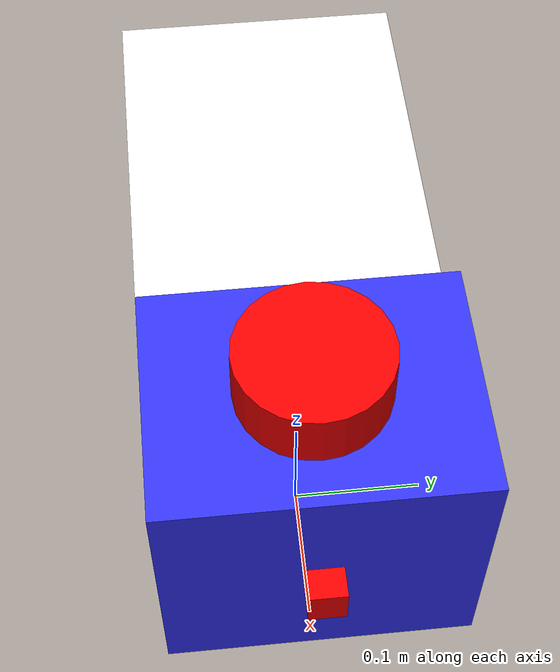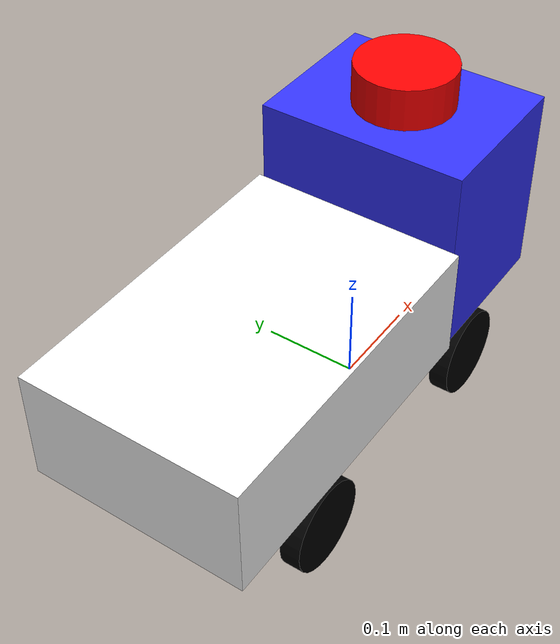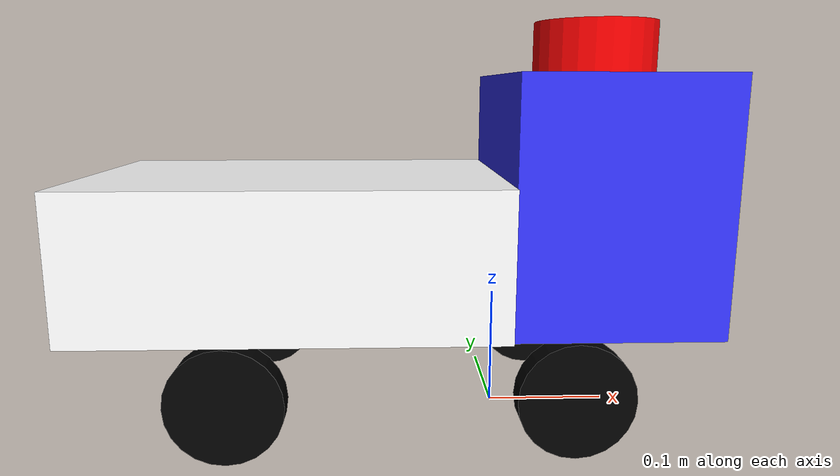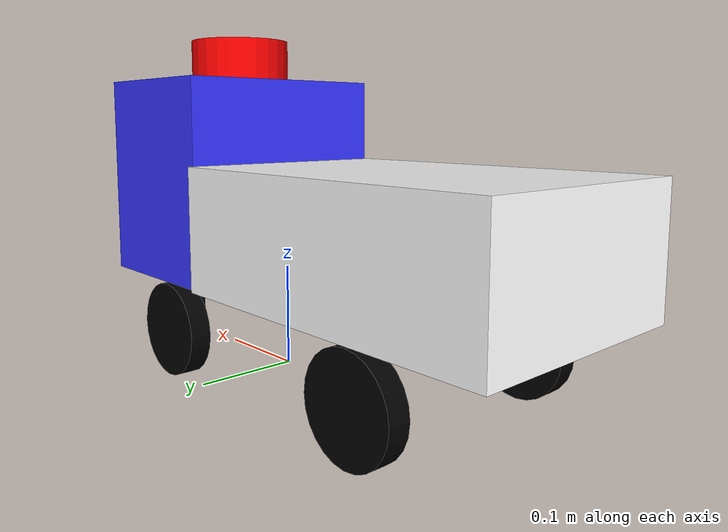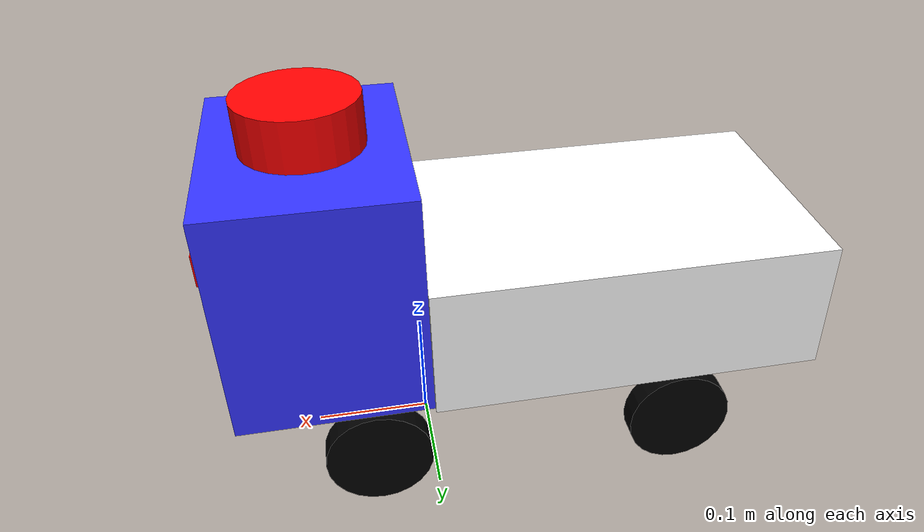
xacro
<?xml version="1.0"?>
<robot xmlns:xacro="http://ros.org/wiki/xacro" name="car">
  <xacro:arg name="wheel_diameter" default="0.09"/>

  <xacro:property name="wheel_radius" value="${$(arg wheel_diameter)/2}"/>
  <xacro:property name="wheel_diameter" value="0.09"/>
  <xacro:property name="wheel_width" value="0.02"/>
  <xacro:property name="car_width" value="0.492"/>
  <xacro:property name="cabin_width" value="0.21"/>
  <xacro:property name="trunk_width" value="0.22"/>
  <xacro:property name="wheel_friction" value="0.8"/>
  <xacro:property name="wheelbase_length" value="0.26"/>
  <xacro:property name="cabin_length" value="0.16"/>
  <xacro:property name="trunk_length" value="0.334"/>
  <xacro:property name="front_wheelbase_width" value="0.198"/>
  <xacro:property name="rear_wheelbase_width" value="0.204"/>
  <xacro:property name="wheelbase_width" value="0.213"/>
  <xacro:property name="wheel_mass" value="0.1"/>
  <xacro:property name="total_mass" value = "3.0"/>
  <xacro:property name="chassis_height" value = "0.286"/>
  <xacro:property name="cabin_height" value = "${chassis_height - wheel_diameter}"/>
  <xacro:property name="trunk_height" value = "0.115"/>
  <xacro:property name="chassis_elevation" value = "-0.01"/>
  <xacro:property name="chassis_mass" value = "${total_mass-4*wheel_mass}"/>
  <xacro:property name="cabin_mass" value = "${chassis_mass/2}"/>
  <xacro:property name="trunk_mass" value = "${chassis_mass/2}"/>

  <material name="blue">
      <color rgba="0.2 0.2 1 1"/>
    </material>

    <material name="white">
      <color rgba="1 1 1 1" />
    </material>

    <material name="black">
      <color rgba="0 0 0 1"/>
    </material>

    <material name="red">
        <color rgba="1 0 0 1"/>
    </material>

    <material name="gray">
        <color rgba="0.5 0.5 0.5 1"/>
    </material>

  <xacro:macro name="cylinder_inertia" params="m r h">
        <inertia  ixx="${m*(3*r*r+h*h)/12}" ixy = "0" ixz = "0"
                    iyy="${m*(3*r*r+h*h)/12}" iyz = "0"
                    izz="${m*r*r/2}" />
  </xacro:macro>

  <xacro:macro name="box_inertia" params="m x y z">
          <inertia  ixx="${m*(y*y+z*z)/12}" ixy = "0" ixz = "0"
                    iyy="${m*(x*x+z*z)/12}" iyz = "0"
                    izz="${m*(x*x+z*z)/12}" />
  </xacro:macro>

  <xacro:macro name="sphere_inertia" params="m r">
          <inertia  ixx="${2*m*r*r/5}" ixy = "0" ixz = "0"
                    iyy="${2*m*r*r/5}" iyz = "0"
                    izz="${2*m*r*r/5}" />
  </xacro:macro>

  <xacro:macro name="cylinder_inertial" params="m r h">
    <inertial>
      <mass value="${m}"/>
      <xacro:cylinder_inertia m="${m}" r="${r}" h="${h}"/>
    </inertial>
  </xacro:macro>

 <link name="base_footprint"/>

  <link name="base_link"/>

  <link name="cabin_link">
    <visual>
      <geometry>
        <box size="${cabin_length} ${cabin_width} ${cabin_height}"/>
      </geometry>
      <material name="blue"/>
    </visual>
    <collision>
      <geometry>
        <box size="${cabin_length} ${cabin_width} ${cabin_height}"/>
      </geometry>
      <material name="blue"/>
    </collision>
    <inertial>
      <mass value="${cabin_mass}"/>
      <xacro:box_inertia m="${0.5*chassis_mass}" x="${cabin_length}" y="${cabin_width}" z="${cabin_height}"/>
    </inertial>
  </link>

  <gazebo reference="cabin_link">
        <material>Gazebo/Blue</material>
    </gazebo>

  <link name="trunk_link">
    <visual>
      <geometry>
        <box size="${trunk_length} ${trunk_width} ${trunk_height}"/>
      </geometry>
        <material name="white"/>
    </visual>
    <collision>
      <geometry>
        <box size="${trunk_length} ${trunk_width} ${trunk_height}"/>
      </geometry>
        <material name="white"/>
    </collision>
    <inertial>
      <mass value="${trunk_mass}"/>
      <xacro:box_inertia m="${0.5*chassis_mass}" x="${trunk_length}" y="${trunk_width}" z="${trunk_height}"/>
    </inertial>
  </link>

  <gazebo reference="trunk_link">
        <material>Gazebo/White</material>
    </gazebo>

  <link name="back_left_wheel">
    <visual>
      <geometry>
        <cylinder length="${wheel_width}" radius="${wheel_radius}"/>
      </geometry>
      <material name="black"/>
    </visual>
    <collision>
      <geometry>
        <cylinder length="${wheel_width}" radius="${wheel_radius}"/>
      </geometry>
    </collision>

    <xacro:cylinder_inertial m="${wheel_mass}" r="${wheel_radius}" h="${wheel_width}"/>
  </link>

  <gazebo reference="back_left_wheel">
        <material>Gazebo/Black</material>
    </gazebo>

  <link name="camera_link">
    <visual>
      <geometry>
       <box size="0.02 0.025 0.03"/>
      </geometry>
       <material name="red"/>
    </visual>
  </link>

  <joint name="camera_joint" type="fixed">
        <parent link="cabin_link"/>
        <child link="camera_link"/>
        <origin xyz="${cabin_length/2 + 0.01} 0 0" rpy="0 0 0"/>
    </joint>

 <joint name="camera_optical_joint" type="fixed">
        <parent link="camera_link"/>
        <child link="camera_link_optical"/>
        <origin xyz="0 0 0" rpy="${-pi/2} 0 ${-pi/2}"/>
    </joint>

    <link name="camera_link_optical"></link>

    <gazebo reference="camera_link">
        <material>Gazebo/Red</material>

        <sensor name="camera" type="camera">
            <pose> 0 0 0 0 0 0 </pose>
            <visualize>true</visualize>
            <update_rate>10</update_rate>
            <camera>
                <horizontal_fov>1.089</horizontal_fov>
                <image>
                    <format>R8G8B8</format>
                    <width>640</width>
                    <height>480</height>
                </image>
                <clip>
                    <near>0.05</near>
                    <far>8.0</far>
                </clip>
            </camera>
            <plugin name="camera_controller" filename="libgazebo_ros_camera.so">
                <frame_name>camera_link_optical</frame_name>
            </plugin>
        </sensor>
    </gazebo>

  <link name="laser_scanner_link">
    <visual>
          <geometry>
              <cylinder radius="0.05" length="0.042"/>
          </geometry>
          <material name="red"/>
      </visual>
      <collision>
          <geometry>
              <cylinder radius="0.045" length="0.02"/>
          </geometry>
      </collision>
    <inertial>
      <mass value="1e-5"/>
      <origin xyz="0 0 0" rpy="0 0 0"/>
      <inertia ixx="1e-6" ixy="0" ixz="0" iyy="1e-6" iyz="0" izz="1e-6"/>
    </inertial>
  </link>

  <gazebo reference="laser_scanner_link">
    <sensor type="ray" name="laser_scanner">
    <always_on>true</always_on>
    <pose> 0 0 0 0 0 0 </pose>
    <visualize>true</visualize>
    <update_rate>10</update_rate>
    <ray>
      <scan>
        <horizontal>
          <samples>360</samples>
          <min_angle>-3.14</min_angle>
          <max_angle>3.14</max_angle>
        </horizontal>
      </scan>
      <range>
        <min>0.3</min>
        <max>15</max>
      </range>
    </ray>
      <plugin name="scan" filename="libgazebo_ros_ray_sensor.so">
      <ros>
        <argument>~/out:=scan</argument>
      </ros>
      <output_type>sensor_msgs/LaserScan</output_type>
        <frame_name>laser_scanner_link</frame_name>
    </plugin>
    </sensor>
  </gazebo>

  <gazebo reference="laser_scanner_link">
        <material>Gazebo/Red</material>
    </gazebo>

  <link name="back_right_wheel">
    <visual>
      <geometry>
        <cylinder length="${wheel_width}" radius="${wheel_radius}"/>
      </geometry>
      <material name="black"/>
    </visual>
    <collision>
      <geometry>
        <cylinder length="${wheel_width}" radius="${wheel_radius}"/>
      </geometry>
    </collision>
    <xacro:cylinder_inertial m="${wheel_mass}" r="${wheel_radius}" h="${wheel_width}"/>
  </link>

  <gazebo reference="back_right_wheel">
        <material>Gazebo/Black</material>
    </gazebo>

  <link name="front_left_wheel_steer">
    <visual>
      <geometry>
        <cylinder length="0.045" radius="0.01"/>
      </geometry>
      <material name="black"/>
    </visual>
    <collision>
      <geometry>
        <cylinder length="0.045" radius="0.01"/>
      </geometry>
    </collision>
    <inertial>
      <mass value="0.1"/>
      <inertia ixx="5.1458e-5" iyy="5.1458e-5" izz="6.125e-5"
               ixy="0" ixz="0" iyz="0"/>
    </inertial>
  </link>

  <gazebo reference="front_left_wheel_steer">
        <material>Gazebo/Gray</material>
    </gazebo>

    <link name="front_left_wheel">
    <visual>
      <geometry>
        <cylinder length="${wheel_width}" radius="${wheel_radius}"/>
      </geometry>
      <material name="black">
        <color rgba="0 0 0 1"/>
      </material>
    </visual>
    <collision>
      <geometry>
        <cylinder length="${wheel_width}" radius="${wheel_radius}"/>
      </geometry>
    </collision>
    <xacro:cylinder_inertial m="${wheel_mass}" r="${wheel_radius}" h="${wheel_width}"/>
  </link>

  <gazebo reference="front_left_wheel">
        <material>Gazebo/Black</material>
    </gazebo>

  <link name="front_right_wheel_steer">
    <visual>
      <geometry>
        <cylinder length="0.045" radius="0.01"/>
      </geometry>
      <material name="black">
        <color rgba="0 0 0 1"/>
      </material>
    </visual>
    <collision>
      <geometry>
        <cylinder length="0.045" radius="0.01"/>
      </geometry>
    </collision>
    <inertial>
      <mass value="0.1"/>
      <inertia ixx="5.1458e-5" iyy="5.1458e-5" izz="6.125e-5"
               ixy="0" ixz="0" iyz="0"/>
    </inertial>
  </link>

  <gazebo reference="front_right_wheel_steer">
        <material>Gazebo/Gray</material>
    </gazebo>

  <link name="front_right_wheel">
    <visual>
      <geometry>
        <cylinder length="${wheel_width}" radius="${wheel_radius}"/>
      </geometry>
      <material name="black"/>
    </visual>
    <collision>
      <geometry>
        <cylinder length="${wheel_width}" radius="${wheel_radius}"/>
      </geometry>
    </collision>
    <xacro:cylinder_inertial m="${wheel_mass}" r="${wheel_radius}" h="${wheel_width}"/>
  </link>

   <gazebo reference="front_right_wheel">
        <material>Gazebo/Black</material>
    </gazebo>

  <joint name="base_link_joint" type="fixed">
     <parent link="base_footprint"/>
     <child link="base_link"/>
     <origin rpy="0 0 0" xyz="0 0 0"/>
   </joint>

   <joint name="laser_scanner_joint" type="fixed">
    <origin rpy="0 0 0" xyz="0 0 ${0.021 + cabin_height/2}"/>
    <parent link="cabin_link"/>
    <child link="laser_scanner_link"/>
  </joint>

  <joint name="back_left_wheel_joint" type="continuous">
    <axis xyz="0 0 1"/>
    <parent link="base_link"/>
    <child link="back_left_wheel"/>
    <origin rpy="-${pi/2} 0 0" xyz="${-trunk_length+0.121} ${rear_wheelbase_width/2} ${wheel_radius}"/>
    <limit effort="10000" velocity="500" />
  </joint>

  <joint name="back_right_wheel_joint" type="continuous">
    <axis xyz="0 0 -1"/>
    <parent link="base_link"/>
    <child link="back_right_wheel"/>
    <origin rpy="${pi/2} 0 0" xyz="${-trunk_length+0.121} ${-rear_wheelbase_width/2} ${wheel_radius}"/>
    <limit effort="10000" velocity="500" />
  </joint>

  <joint name="front_left_wheel_steer_joint" type="revolute">
  <limit lower="-${35*pi/180}" upper="${25.5*pi/180}" effort="0.9" velocity="6.16"/>
    <axis xyz="0 0 1"/>
    <parent link="base_link"/>
    <child link="front_left_wheel_steer"/>
    <origin rpy="0 0 0" xyz="${cabin_length - 0.111} ${front_wheelbase_width/2 - 0.01 - wheel_width/2} ${wheel_radius + 0.045/2}"/>
  </joint>

  <joint name="front_left_wheel_joint" type="continuous">
    <axis xyz="0 0 1"/>
    <parent link="front_left_wheel_steer"/>
    <child link="front_left_wheel"/>
    <origin rpy="-${pi/2} 0 0" xyz="0 ${wheel_width/2 + 0.01} ${-0.045/2}"/>
  </joint>

  <joint name="front_right_wheel_steer_joint" type="revolute">
  <limit lower="-${35*pi/180}" upper="${25.5*pi/180}" effort="0.9" velocity="6.16"/>
    <axis xyz="0 0 1"/>
    <parent link="base_link"/>
    <child link="front_right_wheel_steer"/>
    <origin rpy="0 0 0" xyz="${cabin_length - 0.111} ${- front_wheelbase_width/2 + 0.01 + wheel_width/2} ${wheel_radius + 0.045/2}"/>
  </joint>

  <joint name="front_right_wheel_joint" type="continuous">
    <axis xyz="0 0 -1"/>
    <parent link="front_right_wheel_steer"/>
    <child link="front_right_wheel"/>
    <origin rpy="${pi/2} 0 0" xyz="0 ${-wheel_width/2 - 0.01} ${-0.045/2}"/>
  </joint>

  <joint name="cabin_joint" type="fixed">
    <parent link="base_link"/>
    <child link="cabin_link"/>
    <origin rpy="0 0 0" xyz="${cabin_length/2} 0 ${cabin_height/2 + wheel_diameter}"/>
  </joint>
 <joint name="trunk_joint" type="fixed">
    <parent link="cabin_link"/>
    <child link="trunk_link"/>
    <origin rpy="0 0 0" xyz="${-cabin_length/2 - trunk_length/2} 0 ${-cabin_height/2 + trunk_height/2}"/>
  </joint>

  <gazebo reference="front_left_wheel">
    <mu1>${wheel_friction}</mu1>
  </gazebo>

  <gazebo reference="front_right_wheel">
    <mu1>${wheel_friction}</mu1>
  </gazebo>

  <gazebo reference="back_left_wheel">
    <mu1>${wheel_friction}</mu1>
  </gazebo>

  <gazebo reference="back_right_wheel">
    <mu1>${wheel_friction}</mu1>
  </gazebo>

  <gazebo reference="base_link">
    <dampingFactor>0.00007</dampingFactor>
  </gazebo>

  <gazebo>
    <plugin name="car_gazebo_plugin" filename="libcar_gazebo_plugin.so">
    </plugin>
  </gazebo>

</robot>
